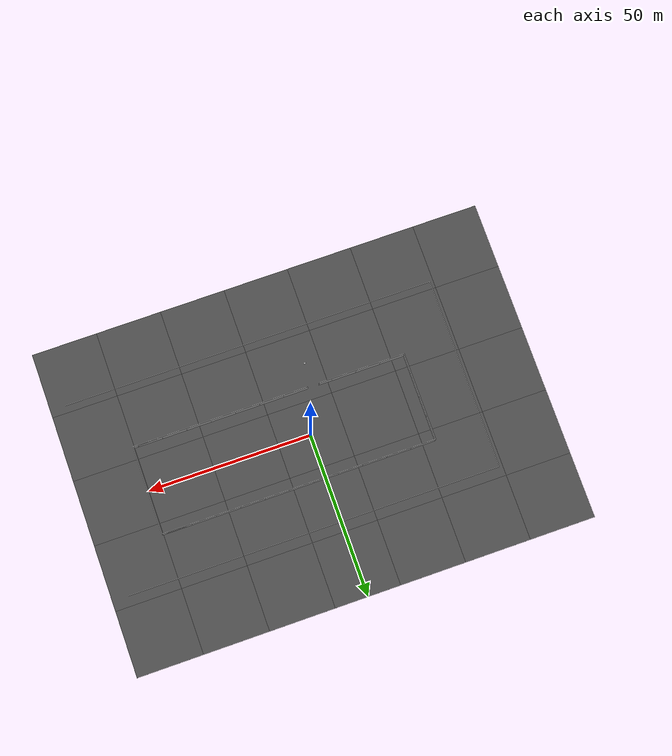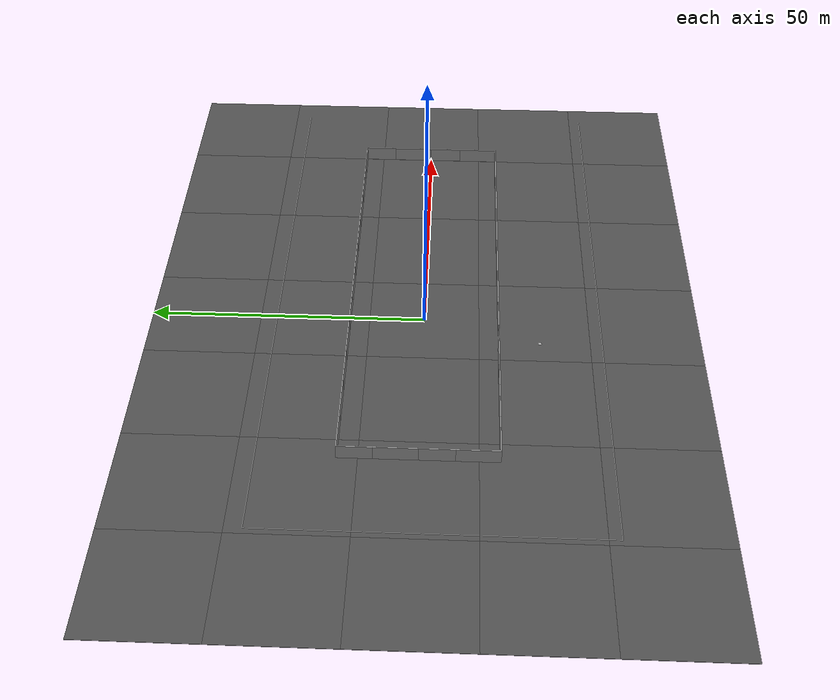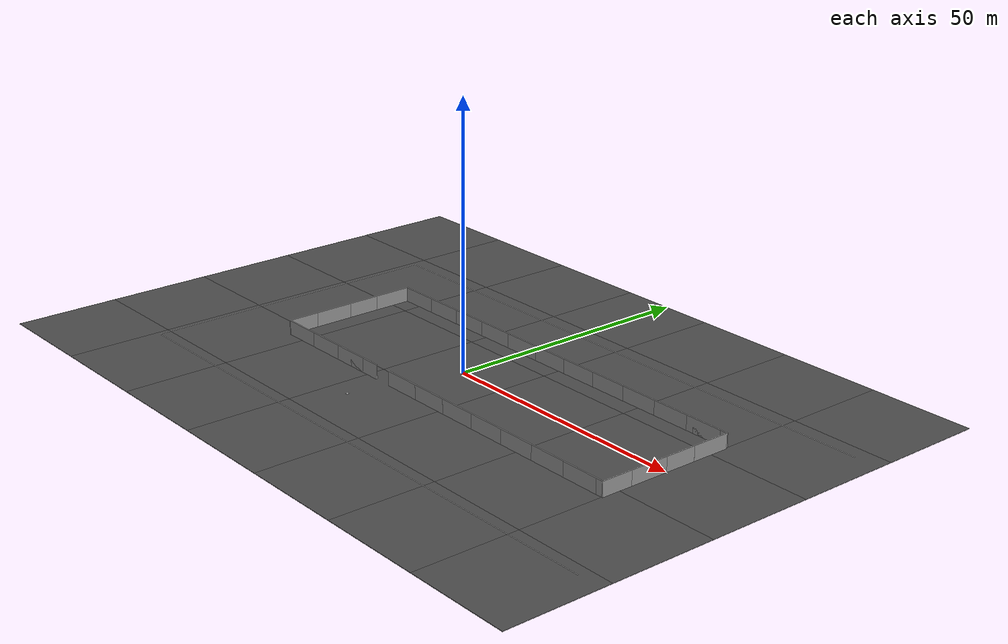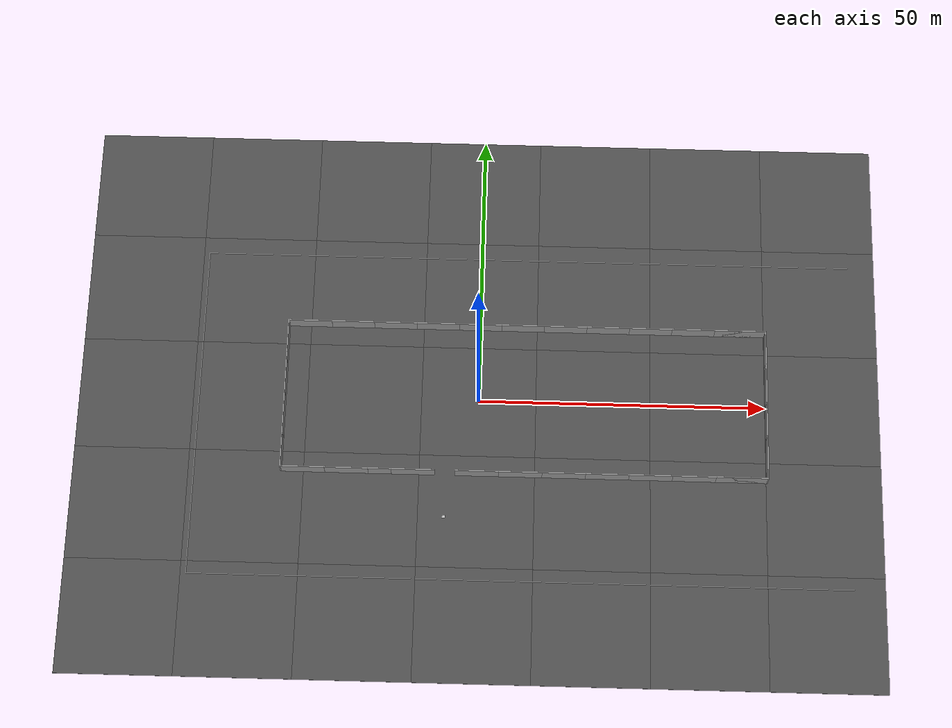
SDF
<sdf version="1.6">
 <world name="default">
  <light name="sun" type="directional">
   <pose>0 0 10 0 -0 0</pose>
   <diffuse>0.8 0.8 0.8 1</diffuse>
   <specular>0.2 0.2 0.2 1</specular>
   <attenuation>
    <range>1000</range>
    <constant>0.9</constant>
    <linear>0.01</linear>
    <quadratic>0.001</quadratic>
   </attenuation>
   <direction>-0.5 0.1 -0.9</direction>
   <spot><inner_angle>0</inner_angle><outer_angle>0</outer_angle><falloff>0</falloff></spot>
  </light>
  <gravity>0 0 -9.8</gravity>
  <magnetic_field>6e-06 2.3e-05 -4.2e-05</magnetic_field>
  <atmosphere type="adiabatic"/>
  <physics name="default_physics" default="0" type="ode">
   <max_step_size>0.001</max_step_size>
   <real_time_factor>1</real_time_factor>
   <real_time_update_rate>1000</real_time_update_rate>
  </physics>
  <scene><ambient>0.4 0.4 0.4 1</ambient><background>0.7 0.7 0.7 1</background><shadows>1</shadows></scene>
  <spherical_coordinates>
   <surface_model>EARTH_WGS84</surface_model>
   <latitude_deg>0</latitude_deg>
   <longitude_deg>0</longitude_deg>
   <elevation>0</elevation>
   <heading_deg>0</heading_deg>
  </spherical_coordinates>
  <audio><device>default</device></audio>
  <model name="grey_wall">
   <static>1</static>
   <link name="link">
    <pose>0 0 1.4 0 -0 0</pose>
    <collision name="collision"><geometry><box><size>7.5 0.2 2.8</size></box></geometry></collision>
    <visual name="visual">
     <cast_shadows>0</cast_shadows>
     <geometry><box><size>7.5 0.2 2.8</size></box></geometry>
     <material>
      <script>
       <uri>model://grey_wall/materials/scripts</uri>
       <uri>model://grey_wall/materials/textures</uri>
       <name>vrc/grey_wall</name>
      </script>
     </material>
    </visual>
   </link>
   <pose>0 -13.5 0 0 -0 0</pose>
  </model>
  <model name="grey_wall_0">
   <static>1</static>
   <link name="link">
    <pose>0 0 1.4 0 -0 0</pose>
    <collision name="collision"><geometry><box><size>7.5 0.2 2.8</size></box></geometry></collision>
    <visual name="visual">
     <cast_shadows>0</cast_shadows>
     <geometry><box><size>7.5 0.2 2.8</size></box></geometry>
     <material>
      <script>
       <uri>model://grey_wall/materials/scripts</uri>
       <uri>model://grey_wall/materials/textures</uri>
       <name>vrc/grey_wall</name>
      </script>
     </material>
    </visual>
   </link>
   <pose>7.5 -13.5 0 0 -0 0</pose>
  </model>
  <model name="grey_wall_1">
   <static>1</static>
   <link name="link">
    <pose>0 0 1.4 0 -0 0</pose>
    <collision name="collision"><geometry><box><size>7.5 0.2 2.8</size></box></geometry></collision>
    <visual name="visual">
     <cast_shadows>0</cast_shadows>
     <geometry><box><size>7.5 0.2 2.8</size></box></geometry>
     <material>
      <script>
       <uri>model://grey_wall/materials/scripts</uri>
       <uri>model://grey_wall/materials/textures</uri>
       <name>vrc/grey_wall</name>
      </script>
     </material>
    </visual>
   </link>
   <pose>-11 -13.5 0 0 -0 0</pose>
  </model>
  <model name="grey_wall_2">
   <static>1</static>
   <link name="link">
    <pose>0 0 1.4 0 -0 0</pose>
    <collision name="collision"><geometry><box><size>7.5 0.2 2.8</size></box></geometry></collision>
    <visual name="visual">
     <cast_shadows>0</cast_shadows>
     <geometry><box><size>7.5 0.2 2.8</size></box></geometry>
     <material>
      <script>
       <uri>model://grey_wall/materials/scripts</uri>
       <uri>model://grey_wall/materials/textures</uri>
       <name>vrc/grey_wall</name>
      </script>
     </material>
    </visual>
   </link>
   <pose>7.5 13.5 0 0 -0 0</pose>
  </model>
  <model name="grey_wall_3">
   <static>1</static>
   <link name="link">
    <pose>0 0 1.4 0 -0 0</pose>
    <collision name="collision"><geometry><box><size>7.5 0.2 2.8</size></box></geometry></collision>
    <visual name="visual">
     <cast_shadows>0</cast_shadows>
     <geometry><box><size>7.5 0.2 2.8</size></box></geometry>
     <material>
      <script>
       <uri>model://grey_wall/materials/scripts</uri>
       <uri>model://grey_wall/materials/textures</uri>
       <name>vrc/grey_wall</name>
      </script>
     </material>
    </visual>
   </link>
   <pose>0 13.5 0 0 -0 0</pose>
  </model>
  <model name="grey_wall_4">
   <static>1</static>
   <link name="link">
    <pose>0 0 1.4 0 -0 0</pose>
    <collision name="collision"><geometry><box><size>7.5 0.2 2.8</size></box></geometry></collision>
    <visual name="visual">
     <cast_shadows>0</cast_shadows>
     <geometry><box><size>7.5 0.2 2.8</size></box></geometry>
     <material>
      <script>
       <uri>model://grey_wall/materials/scripts</uri>
       <uri>model://grey_wall/materials/textures</uri>
       <name>vrc/grey_wall</name>
      </script>
     </material>
    </visual>
   </link>
   <pose>-7.5 13.5 0 0 -0 0</pose>
  </model>
  <model name="grey_wall_5">
   <static>1</static>
   <link name="link">
    <pose>0 0 1.4 0 -0 0</pose>
    <collision name="collision"><geometry><box><size>7.5 0.2 2.8</size></box></geometry></collision>
    <visual name="visual">
     <cast_shadows>0</cast_shadows>
     <geometry><box><size>7.5 0.2 2.8</size></box></geometry>
     <material>
      <script>
       <uri>model://grey_wall/materials/scripts</uri>
       <uri>model://grey_wall/materials/textures</uri>
       <name>vrc/grey_wall</name>
      </script>
     </material>
    </visual>
   </link>
   <pose>30 -13.5 0 0 -0 0</pose>
  </model>
  <model name="grey_wall_6">
   <static>1</static>
   <link name="link">
    <pose>0 0 1.4 0 -0 0</pose>
    <collision name="collision"><geometry><box><size>7.5 0.2 2.8</size></box></geometry></collision>
    <visual name="visual">
     <cast_shadows>0</cast_shadows>
     <geometry><box><size>7.5 0.2 2.8</size></box></geometry>
     <material>
      <script>
       <uri>model://grey_wall/materials/scripts</uri>
       <uri>model://grey_wall/materials/textures</uri>
       <name>vrc/grey_wall</name>
      </script>
     </material>
    </visual>
   </link>
   <pose>15 -13.5 0 0 -0 0</pose>
  </model>
  <model name="grey_wall_7">
   <static>1</static>
   <link name="link">
    <pose>0 0 1.4 0 -0 0</pose>
    <collision name="collision"><geometry><box><size>7.5 0.2 2.8</size></box></geometry></collision>
    <visual name="visual">
     <cast_shadows>0</cast_shadows>
     <geometry><box><size>7.5 0.2 2.8</size></box></geometry>
     <material>
      <script>
       <uri>model://grey_wall/materials/scripts</uri>
       <uri>model://grey_wall/materials/textures</uri>
       <name>vrc/grey_wall</name>
      </script>
     </material>
    </visual>
   </link>
   <pose>22.5 -13.5 0 0 -0 0</pose>
  </model>
  <model name="grey_wall_8">
   <static>1</static>
   <link name="link">
    <pose>0 0 1.4 0 -0 0</pose>
    <collision name="collision"><geometry><box><size>7.5 0.2 2.8</size></box></geometry></collision>
    <visual name="visual">
     <cast_shadows>0</cast_shadows>
     <geometry><box><size>7.5 0.2 2.8</size></box></geometry>
     <material>
      <script>
       <uri>model://grey_wall/materials/scripts</uri>
       <uri>model://grey_wall/materials/textures</uri>
       <name>vrc/grey_wall</name>
      </script>
     </material>
    </visual>
   </link>
   <pose>-15 -13.5 0 0 -0 0</pose>
  </model>
  <model name="grey_wall_9">
   <static>1</static>
   <link name="link">
    <pose>0 0 1.4 0 -0 0</pose>
    <collision name="collision"><geometry><box><size>7.5 0.2 2.8</size></box></geometry></collision>
    <visual name="visual">
     <cast_shadows>0</cast_shadows>
     <geometry><box><size>7.5 0.2 2.8</size></box></geometry>
     <material>
      <script>
       <uri>model://grey_wall/materials/scripts</uri>
       <uri>model://grey_wall/materials/textures</uri>
       <name>vrc/grey_wall</name>
      </script>
     </material>
    </visual>
   </link>
   <pose>-22.5 -13.5 0 0 -0 0</pose>
  </model>
  <model name="grey_wall_10">
   <static>1</static>
   <link name="link">
    <pose>0 0 1.4 0 -0 0</pose>
    <collision name="collision"><geometry><box><size>7.5 0.2 2.8</size></box></geometry></collision>
    <visual name="visual">
     <cast_shadows>0</cast_shadows>
     <geometry><box><size>7.5 0.2 2.8</size></box></geometry>
     <material>
      <script>
       <uri>model://grey_wall/materials/scripts</uri>
       <uri>model://grey_wall/materials/textures</uri>
       <name>vrc/grey_wall</name>
      </script>
     </material>
    </visual>
   </link>
   <pose>-30 -13.5 0 0 -0 0</pose>
  </model>
  <model name="grey_wall_11">
   <static>1</static>
   <link name="link">
    <pose>0 0 1.4 0 -0 0</pose>
    <collision name="collision"><geometry><box><size>7.5 0.2 2.8</size></box></geometry></collision>
    <visual name="visual">
     <cast_shadows>0</cast_shadows>
     <geometry><box><size>7.5 0.2 2.8</size></box></geometry>
     <material>
      <script>
       <uri>model://grey_wall/materials/scripts</uri>
       <uri>model://grey_wall/materials/textures</uri>
       <name>vrc/grey_wall</name>
      </script>
     </material>
    </visual>
   </link>
   <pose>15 13.5 0 0 -0 0</pose>
  </model>
  <model name="grey_wall_12">
   <static>1</static>
   <link name="link">
    <pose>0 0 1.4 0 -0 0</pose>
    <collision name="collision"><geometry><box><size>7.5 0.2 2.8</size></box></geometry></collision>
    <visual name="visual">
     <cast_shadows>0</cast_shadows>
     <geometry><box><size>7.5 0.2 2.8</size></box></geometry>
     <material>
      <script>
       <uri>model://grey_wall/materials/scripts</uri>
       <uri>model://grey_wall/materials/textures</uri>
       <name>vrc/grey_wall</name>
      </script>
     </material>
    </visual>
   </link>
   <pose>22.5 13.5 0 0 -0 0</pose>
  </model>
  <model name="grey_wall_13">
   <static>1</static>
   <link name="link">
    <pose>0 0 1.4 0 -0 0</pose>
    <collision name="collision"><geometry><box><size>7.5 0.2 2.8</size></box></geometry></collision>
    <visual name="visual">
     <cast_shadows>0</cast_shadows>
     <geometry><box><size>7.5 0.2 2.8</size></box></geometry>
     <material>
      <script>
       <uri>model://grey_wall/materials/scripts</uri>
       <uri>model://grey_wall/materials/textures</uri>
       <name>vrc/grey_wall</name>
      </script>
     </material>
    </visual>
   </link>
   <pose>30 13.5 0 0 -0 0</pose>
  </model>
  <model name="grey_wall_14">
   <static>1</static>
   <link name="link">
    <pose>0 0 1.4 0 -0 0</pose>
    <collision name="collision"><geometry><box><size>7.5 0.2 2.8</size></box></geometry></collision>
    <visual name="visual">
     <cast_shadows>0</cast_shadows>
     <geometry><box><size>7.5 0.2 2.8</size></box></geometry>
     <material>
      <script>
       <uri>model://grey_wall/materials/scripts</uri>
       <uri>model://grey_wall/materials/textures</uri>
       <name>vrc/grey_wall</name>
      </script>
     </material>
    </visual>
   </link>
   <pose>-15 13.5 0 0 -0 0</pose>
  </model>
  <model name="grey_wall_15">
   <static>1</static>
   <link name="link">
    <pose>0 0 1.4 0 -0 0</pose>
    <collision name="collision"><geometry><box><size>7.5 0.2 2.8</size></box></geometry></collision>
    <visual name="visual">
     <cast_shadows>0</cast_shadows>
     <geometry><box><size>7.5 0.2 2.8</size></box></geometry>
     <material>
      <script>
       <uri>model://grey_wall/materials/scripts</uri>
       <uri>model://grey_wall/materials/textures</uri>
       <name>vrc/grey_wall</name>
      </script>
     </material>
    </visual>
   </link>
   <pose>-22.5 13.5 0 0 -0 0</pose>
  </model>
  <model name="grey_wall_16">
   <static>1</static>
   <link name="link">
    <pose>0 0 1.4 0 -0 0</pose>
    <collision name="collision"><geometry><box><size>7.5 0.2 2.8</size></box></geometry></collision>
    <visual name="visual">
     <cast_shadows>0</cast_shadows>
     <geometry><box><size>7.5 0.2 2.8</size></box></geometry>
     <material>
      <script>
       <uri>model://grey_wall/materials/scripts</uri>
       <uri>model://grey_wall/materials/textures</uri>
       <name>vrc/grey_wall</name>
      </script>
     </material>
    </visual>
   </link>
   <pose>-30 13.5 0 0 -0 0</pose>
  </model>
  <model name="grey_wall_17">
   <static>1</static>
   <link name="link">
    <pose>0 0 1.4 0 -0 0</pose>
    <collision name="collision"><geometry><box><size>7.5 0.2 2.8</size></box></geometry></collision>
    <visual name="visual">
     <cast_shadows>0</cast_shadows>
     <geometry><box><size>7.5 0.2 2.8</size></box></geometry>
     <material>
      <script>
       <uri>model://grey_wall/materials/scripts</uri>
       <uri>model://grey_wall/materials/textures</uri>
       <name>vrc/grey_wall</name>
      </script>
     </material>
    </visual>
   </link>
   <pose>50.15 -9.85 0 0 -0 1.5708</pose>
  </model>
  <model name="grey_wall_18">
   <static>1</static>
   <link name="link">
    <pose>0 0 1.4 0 -0 0</pose>
    <collision name="collision"><geometry><box><size>7.5 0.2 2.8</size></box></geometry></collision>
    <visual name="visual">
     <cast_shadows>0</cast_shadows>
     <geometry><box><size>7.5 0.2 2.8</size></box></geometry>
     <material>
      <script>
       <uri>model://grey_wall/materials/scripts</uri>
       <uri>model://grey_wall/materials/textures</uri>
       <name>vrc/grey_wall</name>
      </script>
     </material>
    </visual>
   </link>
   <pose>50.15 9.85 0 0 -0 1.5708</pose>
  </model>
  <model name="grey_wall_19">
   <static>1</static>
   <link name="link">
    <pose>0 0 1.4 0 -0 0</pose>
    <collision name="collision"><geometry><box><size>7.5 0.2 2.8</size></box></geometry></collision>
    <visual name="visual">
     <cast_shadows>0</cast_shadows>
     <geometry><box><size>7.5 0.2 2.8</size></box></geometry>
     <material>
      <script>
       <uri>model://grey_wall/materials/scripts</uri>
       <uri>model://grey_wall/materials/textures</uri>
       <name>vrc/grey_wall</name>
      </script>
     </material>
    </visual>
   </link>
   <pose>50.15 -3.75 0 0 -0 1.5708</pose>
  </model>
  <model name="grey_wall_20">
   <static>1</static>
   <link name="link">
    <pose>0 0 1.4 0 -0 0</pose>
    <collision name="collision"><geometry><box><size>7.5 0.2 2.8</size></box></geometry></collision>
    <visual name="visual">
     <cast_shadows>0</cast_shadows>
     <geometry><box><size>7.5 0.2 2.8</size></box></geometry>
     <material>
      <script>
       <uri>model://grey_wall/materials/scripts</uri>
       <uri>model://grey_wall/materials/textures</uri>
       <name>vrc/grey_wall</name>
      </script>
     </material>
    </visual>
   </link>
   <pose>50.15 3.75 0 0 -0 1.5708</pose>
  </model>
  <model name="grey_wall_21">
   <static>1</static>
   <link name="link">
    <pose>0 0 1.4 0 -0 0</pose>
    <collision name="collision"><geometry><box><size>7.5 0.2 2.8</size></box></geometry></collision>
    <visual name="visual">
     <cast_shadows>0</cast_shadows>
     <geometry><box><size>7.5 0.2 2.8</size></box></geometry>
     <material>
      <script>
       <uri>model://grey_wall/materials/scripts</uri>
       <uri>model://grey_wall/materials/textures</uri>
       <name>vrc/grey_wall</name>
      </script>
     </material>
    </visual>
   </link>
   <pose>-33.85 3.75 0 0 -0 1.5708</pose>
  </model>
  <model name="grey_wall_22">
   <static>1</static>
   <link name="link">
    <pose>0 0 1.4 0 -0 0</pose>
    <collision name="collision"><geometry><box><size>7.5 0.2 2.8</size></box></geometry></collision>
    <visual name="visual">
     <cast_shadows>0</cast_shadows>
     <geometry><box><size>7.5 0.2 2.8</size></box></geometry>
     <material>
      <script>
       <uri>model://grey_wall/materials/scripts</uri>
       <uri>model://grey_wall/materials/textures</uri>
       <name>vrc/grey_wall</name>
      </script>
     </material>
    </visual>
   </link>
   <pose>-33.85 9.85 0 0 -0 1.5708</pose>
  </model>
  <model name="grey_wall_23">
   <static>1</static>
   <link name="link">
    <pose>0 0 1.4 0 -0 0</pose>
    <collision name="collision"><geometry><box><size>7.5 0.2 2.8</size></box></geometry></collision>
    <visual name="visual">
     <cast_shadows>0</cast_shadows>
     <geometry><box><size>7.5 0.2 2.8</size></box></geometry>
     <material>
      <script>
       <uri>model://grey_wall/materials/scripts</uri>
       <uri>model://grey_wall/materials/textures</uri>
       <name>vrc/grey_wall</name>
      </script>
     </material>
    </visual>
   </link>
   <pose>-33.85 -3.75 0 0 -0 1.5708</pose>
  </model>
  <model name="grey_wall_24">
   <static>1</static>
   <link name="link">
    <pose>0 0 1.4 0 -0 0</pose>
    <collision name="collision"><geometry><box><size>7.5 0.2 2.8</size></box></geometry></collision>
    <visual name="visual">
     <cast_shadows>0</cast_shadows>
     <geometry><box><size>7.5 0.2 2.8</size></box></geometry>
     <material>
      <script>
       <uri>model://grey_wall/materials/scripts</uri>
       <uri>model://grey_wall/materials/textures</uri>
       <name>vrc/grey_wall</name>
      </script>
     </material>
    </visual>
   </link>
   <pose>-33.85 -9.85 0 0 -0 1.5708</pose>
  </model>
  <model name="asphalt_plane">
   <static>1</static>
   <link name="link">
    <collision name="collision"><geometry><box><size>20 20 0.1</size></box></geometry></collision>
    <visual name="visual">
     <cast_shadows>0</cast_shadows>
     <geometry><box><size>20 20 0.1</size></box></geometry>
     <material>
      <script>
       <uri>model://asphalt_plane/materials/scripts</uri>
       <uri>model://asphalt_plane/materials/textures</uri>
       <name>vrc/asphalt</name>
      </script>
     </material>
    </visual>
   </link>
  </model>
  <model name="asphalt_plane_0">
   <static>1</static>
   <link name="link">
    <collision name="collision"><geometry><box><size>20 20 0.1</size></box></geometry></collision>
    <visual name="visual">
     <cast_shadows>0</cast_shadows>
     <geometry><box><size>20 20 0.1</size></box></geometry>
     <material>
      <script>
       <uri>model://asphalt_plane/materials/scripts</uri>
       <uri>model://asphalt_plane/materials/textures</uri>
       <name>vrc/asphalt</name>
      </script>
     </material>
    </visual>
   </link>
   <pose>-20 0 0 0 -0 0</pose>
  </model>
  <model name="asphalt_plane_1">
   <static>1</static>
   <link name="link">
    <collision name="collision"><geometry><box><size>20 20 0.1</size></box></geometry></collision>
    <visual name="visual">
     <cast_shadows>0</cast_shadows>
     <geometry><box><size>20 20 0.1</size></box></geometry>
     <material>
      <script>
       <uri>model://asphalt_plane/materials/scripts</uri>
       <uri>model://asphalt_plane/materials/textures</uri>
       <name>vrc/asphalt</name>
      </script>
     </material>
    </visual>
   </link>
   <pose>-40 0 0 0 -0 0</pose>
  </model>
  <model name="asphalt_plane_2">
   <static>1</static>
   <link name="link">
    <collision name="collision"><geometry><box><size>20 20 0.1</size></box></geometry></collision>
    <visual name="visual">
     <cast_shadows>0</cast_shadows>
     <geometry><box><size>20 20 0.1</size></box></geometry>
     <material>
      <script>
       <uri>model://asphalt_plane/materials/scripts</uri>
       <uri>model://asphalt_plane/materials/textures</uri>
       <name>vrc/asphalt</name>
      </script>
     </material>
    </visual>
   </link>
   <pose>20 0 0 0 -0 0</pose>
  </model>
  <model name="asphalt_plane_3">
   <static>1</static>
   <link name="link">
    <collision name="collision"><geometry><box><size>20 20 0.1</size></box></geometry></collision>
    <visual name="visual">
     <cast_shadows>0</cast_shadows>
     <geometry><box><size>20 20 0.1</size></box></geometry>
     <material>
      <script>
       <uri>model://asphalt_plane/materials/scripts</uri>
       <uri>model://asphalt_plane/materials/textures</uri>
       <name>vrc/asphalt</name>
      </script>
     </material>
    </visual>
   </link>
   <pose>40 0 0 0 -0 0</pose>
  </model>
  <model name="asphalt_plane_4">
   <static>1</static>
   <link name="link">
    <collision name="collision"><geometry><box><size>20 20 0.1</size></box></geometry></collision>
    <visual name="visual">
     <cast_shadows>0</cast_shadows>
     <geometry><box><size>20 20 0.1</size></box></geometry>
     <material>
      <script>
       <uri>model://asphalt_plane/materials/scripts</uri>
       <uri>model://asphalt_plane/materials/textures</uri>
       <name>vrc/asphalt</name>
      </script>
     </material>
    </visual>
   </link>
   <pose>0 -20 0 0 -0 0</pose>
  </model>
  <model name="asphalt_plane_5">
   <static>1</static>
   <link name="link">
    <collision name="collision"><geometry><box><size>20 20 0.1</size></box></geometry></collision>
    <visual name="visual">
     <cast_shadows>0</cast_shadows>
     <geometry><box><size>20 20 0.1</size></box></geometry>
     <material>
      <script>
       <uri>model://asphalt_plane/materials/scripts</uri>
       <uri>model://asphalt_plane/materials/textures</uri>
       <name>vrc/asphalt</name>
      </script>
     </material>
    </visual>
   </link>
   <pose>-20 -20 0 0 -0 0</pose>
  </model>
  <model name="asphalt_plane_6">
   <static>1</static>
   <link name="link">
    <collision name="collision"><geometry><box><size>20 20 0.1</size></box></geometry></collision>
    <visual name="visual">
     <cast_shadows>0</cast_shadows>
     <geometry><box><size>20 20 0.1</size></box></geometry>
     <material>
      <script>
       <uri>model://asphalt_plane/materials/scripts</uri>
       <uri>model://asphalt_plane/materials/textures</uri>
       <name>vrc/asphalt</name>
      </script>
     </material>
    </visual>
   </link>
   <pose>-40 -20 0 0 -0 0</pose>
  </model>
  <model name="asphalt_plane_7">
   <static>1</static>
   <link name="link">
    <collision name="collision"><geometry><box><size>20 20 0.1</size></box></geometry></collision>
    <visual name="visual">
     <cast_shadows>0</cast_shadows>
     <geometry><box><size>20 20 0.1</size></box></geometry>
     <material>
      <script>
       <uri>model://asphalt_plane/materials/scripts</uri>
       <uri>model://asphalt_plane/materials/textures</uri>
       <name>vrc/asphalt</name>
      </script>
     </material>
    </visual>
   </link>
   <pose>20 -20 0 0 -0 0</pose>
  </model>
  <model name="asphalt_plane_8">
   <static>1</static>
   <link name="link">
    <collision name="collision"><geometry><box><size>20 20 0.1</size></box></geometry></collision>
    <visual name="visual">
     <cast_shadows>0</cast_shadows>
     <geometry><box><size>20 20 0.1</size></box></geometry>
     <material>
      <script>
       <uri>model://asphalt_plane/materials/scripts</uri>
       <uri>model://asphalt_plane/materials/textures</uri>
       <name>vrc/asphalt</name>
      </script>
     </material>
    </visual>
   </link>
   <pose>40 -20 0 0 -0 0</pose>
  </model>
  <model name="asphalt_plane_9">
   <static>1</static>
   <link name="link">
    <collision name="collision"><geometry><box><size>20 20 0.1</size></box></geometry></collision>
    <visual name="visual">
     <cast_shadows>0</cast_shadows>
     <geometry><box><size>20 20 0.1</size></box></geometry>
     <material>
      <script>
       <uri>model://asphalt_plane/materials/scripts</uri>
       <uri>model://asphalt_plane/materials/textures</uri>
       <name>vrc/asphalt</name>
      </script>
     </material>
    </visual>
   </link>
   <pose>-40 20 0 0 -0 0</pose>
  </model>
  <model name="asphalt_plane_10">
   <static>1</static>
   <link name="link">
    <collision name="collision"><geometry><box><size>20 20 0.1</size></box></geometry></collision>
    <visual name="visual">
     <cast_shadows>0</cast_shadows>
     <geometry><box><size>20 20 0.1</size></box></geometry>
     <material>
      <script>
       <uri>model://asphalt_plane/materials/scripts</uri>
       <uri>model://asphalt_plane/materials/textures</uri>
       <name>vrc/asphalt</name>
      </script>
     </material>
    </visual>
   </link>
   <pose>-20 20 0 0 -0 0</pose>
  </model>
  <model name="asphalt_plane_11">
   <static>1</static>
   <link name="link">
    <collision name="collision"><geometry><box><size>20 20 0.1</size></box></geometry></collision>
    <visual name="visual">
     <cast_shadows>0</cast_shadows>
     <geometry><box><size>20 20 0.1</size></box></geometry>
     <material>
      <script>
       <uri>model://asphalt_plane/materials/scripts</uri>
       <uri>model://asphalt_plane/materials/textures</uri>
       <name>vrc/asphalt</name>
      </script>
     </material>
    </visual>
   </link>
   <pose>0 20 0 0 -0 0</pose>
  </model>
  <model name="asphalt_plane_12">
   <static>1</static>
   <link name="link">
    <collision name="collision"><geometry><box><size>20 20 0.1</size></box></geometry></collision>
    <visual name="visual">
     <cast_shadows>0</cast_shadows>
     <geometry><box><size>20 20 0.1</size></box></geometry>
     <material>
      <script>
       <uri>model://asphalt_plane/materials/scripts</uri>
       <uri>model://asphalt_plane/materials/textures</uri>
       <name>vrc/asphalt</name>
      </script>
     </material>
    </visual>
   </link>
   <pose>20 20 0 0 -0 0</pose>
  </model>
  <model name="asphalt_plane_13">
   <static>1</static>
   <link name="link">
    <collision name="collision"><geometry><box><size>20 20 0.1</size></box></geometry></collision>
    <visual name="visual">
     <cast_shadows>0</cast_shadows>
     <geometry><box><size>20 20 0.1</size></box></geometry>
     <material>
      <script>
       <uri>model://asphalt_plane/materials/scripts</uri>
       <uri>model://asphalt_plane/materials/textures</uri>
       <name>vrc/asphalt</name>
      </script>
     </material>
    </visual>
   </link>
   <pose>40 20 0 0 -0 0</pose>
  </model>
  <model name="yellow_point">
   <static>1</static>
   <link name="link">
    <collision name="collision">
     <geometry><plane><normal>0 0 1</normal><size>0.5 0.5</size></plane></geometry>
     <surface><friction><ode><mu>100</mu><mu2>50</mu2></ode></friction></surface>
    </collision>
    <visual name="visual">
     <cast_shadows>0</cast_shadows>
     <geometry><plane><normal>0 0 1</normal><size>0.5 0.5</size></plane></geometry>
     <material>
      <script>
       <uri>model://yellow_point/materials/scripts</uri>
       <uri>model://yellow_point/materials/textures/</uri>
       <name>MyGroundPlane/Image</name>
      </script>
     </material>
    </visual>
   </link>
   <pose>-5.5 -21 0.06 0 -0 0</pose>
  </model>
  <model name="asphalt_plane_14">
   <static>1</static>
   <link name="link">
    <collision name="collision"><geometry><box><size>20 20 0.1</size></box></geometry></collision>
    <visual name="visual">
     <cast_shadows>0</cast_shadows>
     <geometry><box><size>20 20 0.1</size></box></geometry>
     <material>
      <script>
       <uri>model://asphalt_plane/materials/scripts</uri>
       <uri>model://asphalt_plane/materials/textures</uri>
       <name>vrc/asphalt</name>
      </script>
     </material>
    </visual>
   </link>
   <pose>60 0 0 0 -0 0</pose>
  </model>
  <model name="asphalt_plane_15">
   <static>1</static>
   <link name="link">
    <collision name="collision"><geometry><box><size>20 20 0.1</size></box></geometry></collision>
    <visual name="visual">
     <cast_shadows>0</cast_shadows>
     <geometry><box><size>20 20 0.1</size></box></geometry>
     <material>
      <script>
       <uri>model://asphalt_plane/materials/scripts</uri>
       <uri>model://asphalt_plane/materials/textures</uri>
       <name>vrc/asphalt</name>
      </script>
     </material>
    </visual>
   </link>
   <pose>60 20 0 0 -0 0</pose>
  </model>
  <model name="asphalt_plane_16">
   <static>1</static>
   <link name="link">
    <collision name="collision"><geometry><box><size>20 20 0.1</size></box></geometry></collision>
    <visual name="visual">
     <cast_shadows>0</cast_shadows>
     <geometry><box><size>20 20 0.1</size></box></geometry>
     <material>
      <script>
       <uri>model://asphalt_plane/materials/scripts</uri>
       <uri>model://asphalt_plane/materials/textures</uri>
       <name>vrc/asphalt</name>
      </script>
     </material>
    </visual>
   </link>
   <pose>60 -20 0 0 -0 0</pose>
  </model>
  <model name="asphalt_plane_17">
   <static>1</static>
   <link name="link">
    <collision name="collision"><geometry><box><size>20 20 0.1</size></box></geometry></collision>
    <visual name="visual">
     <cast_shadows>0</cast_shadows>
     <geometry><box><size>20 20 0.1</size></box></geometry>
     <material>
      <script>
       <uri>model://asphalt_plane/materials/scripts</uri>
       <uri>model://asphalt_plane/materials/textures</uri>
       <name>vrc/asphalt</name>
      </script>
     </material>
    </visual>
   </link>
   <pose>40 -40 0 0 -0 0</pose>
  </model>
  <model name="asphalt_plane_18">
   <static>1</static>
   <link name="link">
    <collision name="collision"><geometry><box><size>20 20 0.1</size></box></geometry></collision>
    <visual name="visual">
     <cast_shadows>0</cast_shadows>
     <geometry><box><size>20 20 0.1</size></box></geometry>
     <material>
      <script>
       <uri>model://asphalt_plane/materials/scripts</uri>
       <uri>model://asphalt_plane/materials/textures</uri>
       <name>vrc/asphalt</name>
      </script>
     </material>
    </visual>
   </link>
   <pose>60 -40 0 0 -0 0</pose>
  </model>
  <model name="asphalt_plane_19">
   <static>1</static>
   <link name="link">
    <collision name="collision"><geometry><box><size>20 20 0.1</size></box></geometry></collision>
    <visual name="visual">
     <cast_shadows>0</cast_shadows>
     <geometry><box><size>20 20 0.1</size></box></geometry>
     <material>
      <script>
       <uri>model://asphalt_plane/materials/scripts</uri>
       <uri>model://asphalt_plane/materials/textures</uri>
       <name>vrc/asphalt</name>
      </script>
     </material>
    </visual>
   </link>
   <pose>20 -40 0 0 -0 0</pose>
  </model>
  <model name="asphalt_plane_20">
   <static>1</static>
   <link name="link">
    <collision name="collision"><geometry><box><size>20 20 0.1</size></box></geometry></collision>
    <visual name="visual">
     <cast_shadows>0</cast_shadows>
     <geometry><box><size>20 20 0.1</size></box></geometry>
     <material>
      <script>
       <uri>model://asphalt_plane/materials/scripts</uri>
       <uri>model://asphalt_plane/materials/textures</uri>
       <name>vrc/asphalt</name>
      </script>
     </material>
    </visual>
   </link>
   <pose>0 -40 0 0 -0 0</pose>
  </model>
  <model name="asphalt_plane_21">
   <static>1</static>
   <link name="link">
    <collision name="collision"><geometry><box><size>20 20 0.1</size></box></geometry></collision>
    <visual name="visual">
     <cast_shadows>0</cast_shadows>
     <geometry><box><size>20 20 0.1</size></box></geometry>
     <material>
      <script>
       <uri>model://asphalt_plane/materials/scripts</uri>
       <uri>model://asphalt_plane/materials/textures</uri>
       <name>vrc/asphalt</name>
      </script>
     </material>
    </visual>
   </link>
   <pose>-20 -40 0 0 -0 0</pose>
  </model>
  <model name="asphalt_plane_22">
   <static>1</static>
   <link name="link">
    <collision name="collision"><geometry><box><size>20 20 0.1</size></box></geometry></collision>
    <visual name="visual">
     <cast_shadows>0</cast_shadows>
     <geometry><box><size>20 20 0.1</size></box></geometry>
     <material>
      <script>
       <uri>model://asphalt_plane/materials/scripts</uri>
       <uri>model://asphalt_plane/materials/textures</uri>
       <name>vrc/asphalt</name>
      </script>
     </material>
    </visual>
   </link>
   <pose>-40 -40 0 0 -0 0</pose>
  </model>
  <model name="asphalt_plane_23">
   <static>1</static>
   <link name="link">
    <collision name="collision"><geometry><box><size>20 20 0.1</size></box></geometry></collision>
    <visual name="visual">
     <cast_shadows>0</cast_shadows>
     <geometry><box><size>20 20 0.1</size></box></geometry>
     <material>
      <script>
       <uri>model://asphalt_plane/materials/scripts</uri>
       <uri>model://asphalt_plane/materials/textures</uri>
       <name>vrc/asphalt</name>
      </script>
     </material>
    </visual>
   </link>
   <pose>-60 -40 0 0 -0 0</pose>
  </model>
  <model name="asphalt_plane_24">
   <static>1</static>
   <link name="link">
    <collision name="collision"><geometry><box><size>20 20 0.1</size></box></geometry></collision>
    <visual name="visual">
     <cast_shadows>0</cast_shadows>
     <geometry><box><size>20 20 0.1</size></box></geometry>
     <material>
      <script>
       <uri>model://asphalt_plane/materials/scripts</uri>
       <uri>model://asphalt_plane/materials/textures</uri>
       <name>vrc/asphalt</name>
      </script>
     </material>
    </visual>
   </link>
   <pose>-60 -20 0 0 -0 0</pose>
  </model>
  <model name="asphalt_plane_25">
   <static>1</static>
   <link name="link">
    <collision name="collision"><geometry><box><size>20 20 0.1</size></box></geometry></collision>
    <visual name="visual">
     <cast_shadows>0</cast_shadows>
     <geometry><box><size>20 20 0.1</size></box></geometry>
     <material>
      <script>
       <uri>model://asphalt_plane/materials/scripts</uri>
       <uri>model://asphalt_plane/materials/textures</uri>
       <name>vrc/asphalt</name>
      </script>
     </material>
    </visual>
   </link>
   <pose>-60 0 0 0 -0 0</pose>
  </model>
  <model name="asphalt_plane_26">
   <static>1</static>
   <link name="link">
    <collision name="collision"><geometry><box><size>20 20 0.1</size></box></geometry></collision>
    <visual name="visual">
     <cast_shadows>0</cast_shadows>
     <geometry><box><size>20 20 0.1</size></box></geometry>
     <material>
      <script>
       <uri>model://asphalt_plane/materials/scripts</uri>
       <uri>model://asphalt_plane/materials/textures</uri>
       <name>vrc/asphalt</name>
      </script>
     </material>
    </visual>
   </link>
   <pose>-60 20 0 0 -0 0</pose>
  </model>
  <model name="asphalt_plane_27">
   <static>1</static>
   <link name="link">
    <collision name="collision"><geometry><box><size>20 20 0.1</size></box></geometry></collision>
    <visual name="visual">
     <cast_shadows>0</cast_shadows>
     <geometry><box><size>20 20 0.1</size></box></geometry>
     <material>
      <script>
       <uri>model://asphalt_plane/materials/scripts</uri>
       <uri>model://asphalt_plane/materials/textures</uri>
       <name>vrc/asphalt</name>
      </script>
     </material>
    </visual>
   </link>
   <pose>-60 40 0 0 -0 0</pose>
  </model>
  <model name="asphalt_plane_28">
   <static>1</static>
   <link name="link">
    <collision name="collision"><geometry><box><size>20 20 0.1</size></box></geometry></collision>
    <visual name="visual">
     <cast_shadows>0</cast_shadows>
     <geometry><box><size>20 20 0.1</size></box></geometry>
     <material>
      <script>
       <uri>model://asphalt_plane/materials/scripts</uri>
       <uri>model://asphalt_plane/materials/textures</uri>
       <name>vrc/asphalt</name>
      </script>
     </material>
    </visual>
   </link>
   <pose>-40 40 0 0 -0 0</pose>
  </model>
  <model name="asphalt_plane_29">
   <static>1</static>
   <link name="link">
    <collision name="collision"><geometry><box><size>20 20 0.1</size></box></geometry></collision>
    <visual name="visual">
     <cast_shadows>0</cast_shadows>
     <geometry><box><size>20 20 0.1</size></box></geometry>
     <material>
      <script>
       <uri>model://asphalt_plane/materials/scripts</uri>
       <uri>model://asphalt_plane/materials/textures</uri>
       <name>vrc/asphalt</name>
      </script>
     </material>
    </visual>
   </link>
   <pose>-20 40 0 0 -0 0</pose>
  </model>
  <model name="asphalt_plane_30">
   <static>1</static>
   <link name="link">
    <collision name="collision"><geometry><box><size>20 20 0.1</size></box></geometry></collision>
    <visual name="visual">
     <cast_shadows>0</cast_shadows>
     <geometry><box><size>20 20 0.1</size></box></geometry>
     <material>
      <script>
       <uri>model://asphalt_plane/materials/scripts</uri>
       <uri>model://asphalt_plane/materials/textures</uri>
       <name>vrc/asphalt</name>
      </script>
     </material>
    </visual>
   </link>
   <pose>0 40 0 0 -0 0</pose>
  </model>
  <model name="asphalt_plane_31">
   <static>1</static>
   <link name="link">
    <collision name="collision"><geometry><box><size>20 20 0.1</size></box></geometry></collision>
    <visual name="visual">
     <cast_shadows>0</cast_shadows>
     <geometry><box><size>20 20 0.1</size></box></geometry>
     <material>
      <script>
       <uri>model://asphalt_plane/materials/scripts</uri>
       <uri>model://asphalt_plane/materials/textures</uri>
       <name>vrc/asphalt</name>
      </script>
     </material>
    </visual>
   </link>
   <pose>20 40 0 0 -0 0</pose>
  </model>
  <model name="asphalt_plane_32">
   <static>1</static>
   <link name="link">
    <collision name="collision"><geometry><box><size>20 20 0.1</size></box></geometry></collision>
    <visual name="visual">
     <cast_shadows>0</cast_shadows>
     <geometry><box><size>20 20 0.1</size></box></geometry>
     <material>
      <script>
       <uri>model://asphalt_plane/materials/scripts</uri>
       <uri>model://asphalt_plane/materials/textures</uri>
       <name>vrc/asphalt</name>
      </script>
     </material>
    </visual>
   </link>
   <pose>40 40 0 0 -0 0</pose>
  </model>
  <model name="asphalt_plane_33">
   <static>1</static>
   <link name="link">
    <collision name="collision"><geometry><box><size>20 20 0.1</size></box></geometry></collision>
    <visual name="visual">
     <cast_shadows>0</cast_shadows>
     <geometry><box><size>20 20 0.1</size></box></geometry>
     <material>
      <script>
       <uri>model://asphalt_plane/materials/scripts</uri>
       <uri>model://asphalt_plane/materials/textures</uri>
       <name>vrc/asphalt</name>
      </script>
     </material>
    </visual>
   </link>
   <pose>60 40 0 0 -0 0</pose>
  </model>
  <model name="54m_redline">
   <static>1</static>
   <link name="link">
    <collision name="collision">
     <geometry><plane><normal>0 0 1</normal><size>59.3 0.1</size></plane></geometry>
     <surface><friction><ode><mu>100</mu><mu2>50</mu2></ode></friction></surface>
    </collision>
    <visual name="visual">
     <cast_shadows>0</cast_shadows>
     <geometry><plane><normal>0 0 1</normal><size>59.3 0.1</size></plane></geometry>
     <material>
      <script>
       <uri>model://54m_redline/materials/scripts</uri>
       <uri>model://54m_redline/materials/textures/</uri>
       <name>MyGroundPlane/Image</name>
      </script>
     </material>
    </visual>
   </link>
   <pose>65.3 -2.6 0.06 0 -0 1.5707</pose>
  </model>
  <model name="54m_redline_0">
   <static>1</static>
   <link name="link">
    <collision name="collision">
     <geometry><plane><normal>0 0 1</normal><size>59.3 0.1</size></plane></geometry>
     <surface><friction><ode><mu>100</mu><mu2>50</mu2></ode></friction></surface>
    </collision>
    <visual name="visual">
     <cast_shadows>0</cast_shadows>
     <geometry><plane><normal>0 0 1</normal><size>59.3 0.1</size></plane></geometry>
     <material>
      <script>
       <uri>model://54m_redline/materials/scripts</uri>
       <uri>model://54m_redline/materials/textures/</uri>
       <name>MyGroundPlane/Image</name>
      </script>
     </material>
    </visual>
   </link>
   <pose>-49 -2.6 0.06 0 -0 1.5707</pose>
  </model>
  <model name="grey_wall_25">
   <static>1</static>
   <link name="link">
    <pose>0 0 1.4 0 -0 0</pose>
    <collision name="collision"><geometry><box><size>7.5 0.2 2.8</size></box></geometry></collision>
    <visual name="visual">
     <cast_shadows>0</cast_shadows>
     <geometry><box><size>7.5 0.2 2.8</size></box></geometry>
     <material>
      <script>
       <uri>model://grey_wall/materials/scripts</uri>
       <uri>model://grey_wall/materials/textures</uri>
       <name>vrc/grey_wall</name>
      </script>
     </material>
    </visual>
   </link>
   <pose>37.5 -13.5 0 0 -0 0</pose>
  </model>
  <model name="grey_wall_26">
   <static>1</static>
   <link name="link">
    <pose>0 0 1.4 0 -0 0</pose>
    <collision name="collision"><geometry><box><size>7.5 0.2 2.8</size></box></geometry></collision>
    <visual name="visual">
     <cast_shadows>0</cast_shadows>
     <geometry><box><size>7.5 0.2 2.8</size></box></geometry>
     <material>
      <script>
       <uri>model://grey_wall/materials/scripts</uri>
       <uri>model://grey_wall/materials/textures</uri>
       <name>vrc/grey_wall</name>
      </script>
     </material>
    </visual>
   </link>
   <pose>45 -13.5 0 0 -0 0</pose>
  </model>
  <model name="grey_wall_27">
   <static>1</static>
   <link name="link">
    <pose>0 0 1.4 0 -0 0</pose>
    <collision name="collision"><geometry><box><size>7.5 0.2 2.8</size></box></geometry></collision>
    <visual name="visual">
     <cast_shadows>0</cast_shadows>
     <geometry><box><size>7.5 0.2 2.8</size></box></geometry>
     <material>
      <script>
       <uri>model://grey_wall/materials/scripts</uri>
       <uri>model://grey_wall/materials/textures</uri>
       <name>vrc/grey_wall</name>
      </script>
     </material>
    </visual>
   </link>
   <pose>46.5 -13.5 0 0 -0 0</pose>
  </model>
  <model name="grey_wall_28">
   <static>1</static>
   <link name="link">
    <pose>0 0 1.4 0 -0 0</pose>
    <collision name="collision"><geometry><box><size>7.5 0.2 2.8</size></box></geometry></collision>
    <visual name="visual">
     <cast_shadows>0</cast_shadows>
     <geometry><box><size>7.5 0.2 2.8</size></box></geometry>
     <material>
      <script>
       <uri>model://grey_wall/materials/scripts</uri>
       <uri>model://grey_wall/materials/textures</uri>
       <name>vrc/grey_wall</name>
      </script>
     </material>
    </visual>
   </link>
   <pose>37.5 13.5 0 0 -0 0</pose>
  </model>
  <model name="grey_wall_29">
   <static>1</static>
   <link name="link">
    <pose>0 0 1.4 0 -0 0</pose>
    <collision name="collision"><geometry><box><size>7.5 0.2 2.8</size></box></geometry></collision>
    <visual name="visual">
     <cast_shadows>0</cast_shadows>
     <geometry><box><size>7.5 0.2 2.8</size></box></geometry>
     <material>
      <script>
       <uri>model://grey_wall/materials/scripts</uri>
       <uri>model://grey_wall/materials/textures</uri>
       <name>vrc/grey_wall</name>
      </script>
     </material>
    </visual>
   </link>
   <pose>45 13.5 0 0 -0 0</pose>
  </model>
  <model name="grey_wall_30">
   <static>1</static>
   <link name="link">
    <pose>0 0 1.4 0 -0 0</pose>
    <collision name="collision"><geometry><box><size>7.5 0.2 2.8</size></box></geometry></collision>
    <visual name="visual">
     <cast_shadows>0</cast_shadows>
     <geometry><box><size>7.5 0.2 2.8</size></box></geometry>
     <material>
      <script>
       <uri>model://grey_wall/materials/scripts</uri>
       <uri>model://grey_wall/materials/textures</uri>
       <name>vrc/grey_wall</name>
      </script>
     </material>
    </visual>
   </link>
   <pose>46.5 13.5 0 0 -0 0</pose>
  </model>
  <model name="92m_redline">
   <static>1</static>
   <link name="link">
    <collision name="collision">
     <geometry><plane><normal>0 0 1</normal><size>114.3 0.1</size></plane></geometry>
     <surface><friction><ode><mu>100</mu><mu2>50</mu2></ode></friction></surface>
    </collision>
    <visual name="visual">
     <cast_shadows>0</cast_shadows>
     <geometry><plane><normal>0 0 1</normal><size>114.3 0.1</size></plane></geometry>
     <material>
      <script>
       <uri>model://92m_redline/materials/scripts</uri>
       <uri>model://92m_redline/materials/textures/</uri>
       <name>MyGroundPlane/Image</name>
      </script>
     </material>
    </visual>
   </link>
   <pose>8.2 27 0.06 0 -0 0</pose>
  </model>
  <model name="92m_redline_0">
   <static>1</static>
   <link name="link">
    <collision name="collision">
     <geometry><plane><normal>0 0 1</normal><size>114.3 0.1</size></plane></geometry>
     <surface><friction><ode><mu>100</mu><mu2>50</mu2></ode></friction></surface>
    </collision>
    <visual name="visual">
     <cast_shadows>0</cast_shadows>
     <geometry><plane><normal>0 0 1</normal><size>114.3 0.1</size></plane></geometry>
     <material>
      <script>
       <uri>model://92m_redline/materials/scripts</uri>
       <uri>model://92m_redline/materials/textures/</uri>
       <name>MyGroundPlane/Image</name>
      </script>
     </material>
    </visual>
   </link>
   <pose>8.2 -32.2 0.06 0 -0 0</pose>
  </model>
 </world>
</sdf>
